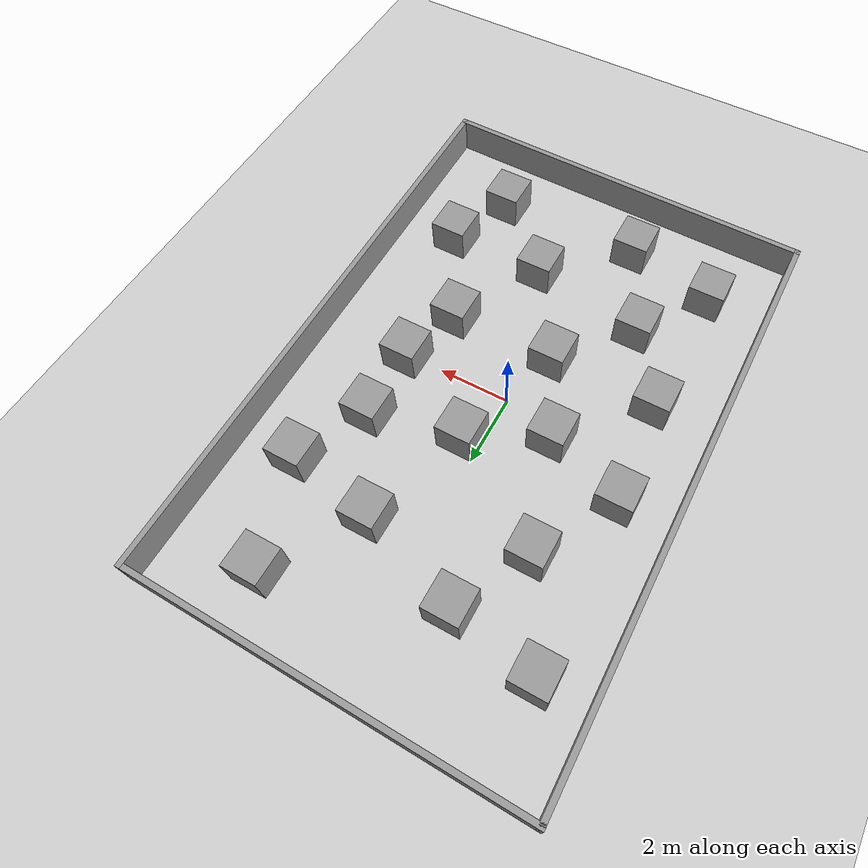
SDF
<sdf version="1.7">
 <world name="default">
  <light name="sun" type="directional">
   <pose>0 0 10 0 -0 0</pose>
   <diffuse>0.8 0.8 0.8 1</diffuse>
   <specular>0.2 0.2 0.2 1</specular>
   <attenuation>
    <range>1000</range>
    <constant>0.9</constant>
    <linear>0.01</linear>
    <quadratic>0.001</quadratic>
   </attenuation>
   <direction>-0.5 0.1 -0.9</direction>
   <spot><inner_angle>0</inner_angle><outer_angle>0</outer_angle><falloff>0</falloff></spot>
  </light>
  <model name="ground_plane">
   <static>1</static>
   <link name="link">
    <collision name="collision">
     <geometry><plane><normal>0 0 1</normal><size>100 100</size></plane></geometry>
     <surface>
      <contact><collide_bitmask>65535</collide_bitmask></contact>
      <friction><ode><mu>100</mu><mu2>50</mu2></ode></friction>
     </surface>
    </collision>
    <visual name="visual">
     <cast_shadows>0</cast_shadows>
     <geometry><plane><normal>0 0 1</normal><size>100 100</size></plane></geometry>
     <material>
      <script><uri>file://media/materials/scripts/gazebo.material</uri><name>Gazebo/Grey</name></script>
     </material>
    </visual>
   </link>
  </model>
  <gravity>0 0 -9.8</gravity>
  <magnetic_field>6e-06 2.3e-05 -4.2e-05</magnetic_field>
  <atmosphere type="adiabatic"/>
  <physics type="ode">
   <max_step_size>0.001</max_step_size>
   <real_time_factor>1</real_time_factor>
   <real_time_update_rate>1000</real_time_update_rate>
  </physics>
  <scene><ambient>0.4 0.4 0.4 1</ambient><background>0.7 0.7 0.7 1</background><shadows>1</shadows></scene>
  <spherical_coordinates>
   <surface_model>EARTH_WGS84</surface_model>
   <latitude_deg>0</latitude_deg>
   <longitude_deg>0</longitude_deg>
   <elevation>0</elevation>
   <heading_deg>0</heading_deg>
  </spherical_coordinates>
  <model name="wall_boundary">
   <pose>0.163695 0.39576 0 0 -0 0</pose>
   <link name="Wall_21">
    <collision name="Wall_21_Collision">
     <geometry><box><size>10.9434 0.15 1</size></box></geometry>
     <pose>0 0 0.5 0 -0 0</pose>
    </collision>
    <visual name="Wall_21_Visual">
     <pose>0 0 0.5 0 -0 0</pose>
     <geometry><box><size>10.9434 0.15 1</size></box></geometry>
     <material>
      <script><uri>file://media/materials/scripts/gazebo.material</uri><name>Gazebo/Grey</name></script>
      <ambient>1 1 1 1</ambient>
     </material>
     <meta><layer>0</layer></meta>
    </visual>
    <pose>0.040955 -8.088 0 0 -0 -0.015103</pose>
   </link>
   <link name="Wall_22">
    <collision name="Wall_22_Collision">
     <geometry><box><size>16.3256 0.15 1</size></box></geometry>
     <pose>0 0 0.5 0 -0 0</pose>
    </collision>
    <visual name="Wall_22_Visual">
     <pose>0 0 0.5 0 -0 0</pose>
     <geometry><box><size>16.3256 0.15 1</size></box></geometry>
     <material>
      <script><uri>file://media/materials/scripts/gazebo.material</uri><name>Gazebo/Grey</name></script>
      <ambient>1 1 1 1</ambient>
     </material>
     <meta><layer>0</layer></meta>
    </visual>
    <pose>5.39595 -0.0815 0 0 -0 1.57587</pose>
   </link>
   <link name="Wall_23">
    <collision name="Wall_23_Collision">
     <geometry><box><size>10.9432 0.15 1</size></box></geometry>
     <pose>0 0 0.5 0 -0 0</pose>
    </collision>
    <visual name="Wall_23_Visual">
     <pose>0 0 0.5 0 -0 0</pose>
     <geometry><box><size>10.9432 0.15 1</size></box></geometry>
     <material>
      <script><uri>file://media/materials/scripts/gazebo.material</uri><name>Gazebo/Grey</name></script>
      <ambient>1 1 1 1</ambient>
     </material>
     <meta><layer>0</layer></meta>
    </visual>
    <pose>-0.041045 8.088 0 0 -0 3.12649</pose>
   </link>
   <link name="Wall_24">
    <collision name="Wall_24_Collision">
     <geometry><box><size>16.3256 0.15 1</size></box></geometry>
     <pose>0 0 0.5 0 -0 0</pose>
    </collision>
    <visual name="Wall_24_Visual">
     <pose>0 0 0.5 0 -0 0</pose>
     <geometry><box><size>16.3256 0.15 1</size></box></geometry>
     <material>
      <script><uri>file://media/materials/scripts/gazebo.material</uri><name>Gazebo/Grey</name></script>
      <ambient>1 1 1 1</ambient>
     </material>
     <meta><layer>0</layer></meta>
    </visual>
    <pose>-5.39604 0.0815 0 0 -0 -1.56573</pose>
   </link>
   <static>1</static>
  </model>
  <model name="unit_box">
   <pose>-2.48616 3.4565 0.499995 0 1e-05 0</pose>
   <link name="link">
    <inertial>
     <mass>1</mass>
     <inertia>
      <ixx>0.166667</ixx>
      <ixy>0</ixy>
      <ixz>0</ixz>
      <iyy>0.166667</iyy>
      <iyz>0</iyz>
      <izz>0.166667</izz>
     </inertia>
    </inertial>
    <collision name="collision"><geometry><box><size>1 1 1</size></box></geometry></collision>
    <visual name="visual">
     <geometry><box><size>1 1 1</size></box></geometry>
     <material>
      <script><name>Gazebo/Grey</name><uri>file://media/materials/scripts/gazebo.material</uri></script>
     </material>
    </visual>
   </link>
  </model>
  <model name="unit_box_0">
   <pose>0.516015 1.50266 0.499995 -1e-05 -0 -0</pose>
   <link name="link">
    <inertial>
     <mass>1</mass>
     <inertia>
      <ixx>0.166667</ixx>
      <ixy>0</ixy>
      <ixz>0</ixz>
      <iyy>0.166667</iyy>
      <iyz>0</iyz>
      <izz>0.166667</izz>
     </inertia>
    </inertial>
    <collision name="collision"><geometry><box><size>1 1 1</size></box></geometry></collision>
    <visual name="visual">
     <geometry><box><size>1 1 1</size></box></geometry>
     <material>
      <script><name>Gazebo/Grey</name><uri>file://media/materials/scripts/gazebo.material</uri></script>
     </material>
    </visual>
   </link>
  </model>
  <model name="unit_box_1">
   <pose>2.4915 -1.67427 0.499995 0 1e-05 0</pose>
   <link name="link">
    <inertial>
     <mass>1</mass>
     <inertia>
      <ixx>0.166667</ixx>
      <ixy>0</ixy>
      <ixz>0</ixz>
      <iyy>0.166667</iyy>
      <iyz>0</iyz>
      <izz>0.166667</izz>
     </inertia>
    </inertial>
    <collision name="collision"><geometry><box><size>1 1 1</size></box></geometry></collision>
    <visual name="visual">
     <geometry><box><size>1 1 1</size></box></geometry>
     <material>
      <script><name>Gazebo/Grey</name><uri>file://media/materials/scripts/gazebo.material</uri></script>
     </material>
    </visual>
   </link>
  </model>
  <model name="unit_box_2">
   <pose>-0.476652 -1.68548 0.499995 -1e-05 -0 -0</pose>
   <link name="link">
    <inertial>
     <mass>1</mass>
     <inertia>
      <ixx>0.166667</ixx>
      <ixy>0</ixy>
      <ixz>0</ixz>
      <iyy>0.166667</iyy>
      <iyz>0</iyz>
      <izz>0.166667</izz>
     </inertia>
    </inertial>
    <collision name="collision"><geometry><box><size>1 1 1</size></box></geometry></collision>
    <visual name="visual">
     <geometry><box><size>1 1 1</size></box></geometry>
     <material>
      <script><name>Gazebo/Grey</name><uri>file://media/materials/scripts/gazebo.material</uri></script>
     </material>
    </visual>
   </link>
  </model>
  <model name="unit_box_3">
   <pose>-1.52948 0.457228 0.499995 0 1e-05 0</pose>
   <link name="link">
    <inertial>
     <mass>1</mass>
     <inertia>
      <ixx>0.166667</ixx>
      <ixy>0</ixy>
      <ixz>0</ixz>
      <iyy>0.166667</iyy>
      <iyz>0</iyz>
      <izz>0.166667</izz>
     </inertia>
    </inertial>
    <collision name="collision"><geometry><box><size>1 1 1</size></box></geometry></collision>
    <visual name="visual">
     <geometry><box><size>1 1 1</size></box></geometry>
     <material>
      <script><name>Gazebo/Grey</name><uri>file://media/materials/scripts/gazebo.material</uri></script>
     </material>
    </visual>
   </link>
  </model>
  <model name="unit_box_4">
   <pose>1.43985 4.49024 0.499995 -1e-05 -0 -0</pose>
   <link name="link">
    <inertial>
     <mass>1</mass>
     <inertia>
      <ixx>0.166667</ixx>
      <ixy>0</ixy>
      <ixz>0</ixz>
      <iyy>0.166667</iyy>
      <iyz>0</iyz>
      <izz>0.166667</izz>
     </inertia>
    </inertial>
    <collision name="collision"><geometry><box><size>1 1 1</size></box></geometry></collision>
    <visual name="visual">
     <geometry><box><size>1 1 1</size></box></geometry>
     <material>
      <script><name>Gazebo/Grey</name><uri>file://media/materials/scripts/gazebo.material</uri></script>
     </material>
    </visual>
   </link>
  </model>
  <model name="unit_box_5">
   <pose>-1.45873 5.51901 0.499995 0 1e-05 0</pose>
   <link name="link">
    <inertial>
     <mass>1</mass>
     <inertia>
      <ixx>0.166667</ixx>
      <ixy>0</ixy>
      <ixz>0</ixz>
      <iyy>0.166667</iyy>
      <iyz>0</iyz>
      <izz>0.166667</izz>
     </inertia>
    </inertial>
    <collision name="collision"><geometry><box><size>1 1 1</size></box></geometry></collision>
    <visual name="visual">
     <geometry><box><size>1 1 1</size></box></geometry>
     <material>
      <script><name>Gazebo/Grey</name><uri>file://media/materials/scripts/gazebo.material</uri></script>
     </material>
    </visual>
   </link>
  </model>
  <model name="unit_box_6">
   <pose>-2.11582 -3.60109 0.499995 -1e-05 -0 -0</pose>
   <link name="link">
    <inertial>
     <mass>1</mass>
     <inertia>
      <ixx>0.166667</ixx>
      <ixy>0</ixy>
      <ixz>0</ixz>
      <iyy>0.166667</iyy>
      <iyz>0</iyz>
      <izz>0.166667</izz>
     </inertia>
    </inertial>
    <collision name="collision"><geometry><box><size>1 1 1</size></box></geometry></collision>
    <visual name="visual">
     <geometry><box><size>1 1 1</size></box></geometry>
     <material>
      <script><name>Gazebo/Grey</name><uri>file://media/materials/scripts/gazebo.material</uri></script>
     </material>
    </visual>
   </link>
  </model>
  <model name="unit_box_7">
   <pose>-3.73207 1.24624 0.499995 -1e-05 -0 -0</pose>
   <link name="link">
    <inertial>
     <mass>1</mass>
     <inertia>
      <ixx>0.166667</ixx>
      <ixy>0</ixy>
      <ixz>0</ixz>
      <iyy>0.166667</iyy>
      <iyz>0</iyz>
      <izz>0.166667</izz>
     </inertia>
    </inertial>
    <collision name="collision"><geometry><box><size>1 1 1</size></box></geometry></collision>
    <visual name="visual">
     <geometry><box><size>1 1 1</size></box></geometry>
     <material>
      <script><name>Gazebo/Grey</name><uri>file://media/materials/scripts/gazebo.material</uri></script>
     </material>
    </visual>
   </link>
  </model>
  <model name="unit_box_8">
   <pose>2.97795 2.0471 0.499995 -1e-05 -0 -0</pose>
   <link name="link">
    <inertial>
     <mass>1</mass>
     <inertia>
      <ixx>0.166667</ixx>
      <ixy>0</ixy>
      <ixz>0</ixz>
      <iyy>0.166667</iyy>
      <iyz>0</iyz>
      <izz>0.166667</izz>
     </inertia>
    </inertial>
    <collision name="collision"><geometry><box><size>1 1 1</size></box></geometry></collision>
    <visual name="visual">
     <geometry><box><size>1 1 1</size></box></geometry>
     <material>
      <script><name>Gazebo/Grey</name><uri>file://media/materials/scripts/gazebo.material</uri></script>
     </material>
    </visual>
   </link>
  </model>
  <model name="unit_box_9">
   <pose>1.14831 -4.17889 0.499995 0 1e-05 0</pose>
   <link name="link">
    <inertial>
     <mass>1</mass>
     <inertia>
      <ixx>0.166667</ixx>
      <ixy>0</ixy>
      <ixz>0</ixz>
      <iyy>0.166667</iyy>
      <iyz>0</iyz>
      <izz>0.166667</izz>
     </inertia>
    </inertial>
    <collision name="collision"><geometry><box><size>1 1 1</size></box></geometry></collision>
    <visual name="visual">
     <geometry><box><size>1 1 1</size></box></geometry>
     <material>
      <script><name>Gazebo/Grey</name><uri>file://media/materials/scripts/gazebo.material</uri></script>
     </material>
    </visual>
   </link>
  </model>
  <model name="unit_box_10">
   <pose>-0.946508 -6.10557 0.499995 -1e-05 -0 -0</pose>
   <link name="link">
    <inertial>
     <mass>1</mass>
     <inertia>
      <ixx>0.166667</ixx>
      <ixy>0</ixy>
      <ixz>0</ixz>
      <iyy>0.166667</iyy>
      <iyz>0</iyz>
      <izz>0.166667</izz>
     </inertia>
    </inertial>
    <collision name="collision"><geometry><box><size>1 1 1</size></box></geometry></collision>
    <visual name="visual">
     <geometry><box><size>1 1 1</size></box></geometry>
     <material>
      <script><name>Gazebo/Grey</name><uri>file://media/materials/scripts/gazebo.material</uri></script>
     </material>
    </visual>
   </link>
  </model>
  <model name="unit_box_11">
   <pose>3.00278 6.84849 0.499995 0 1e-05 0</pose>
   <link name="link">
    <inertial>
     <mass>1</mass>
     <inertia>
      <ixx>0.166667</ixx>
      <ixy>0</ixy>
      <ixz>0</ixz>
      <iyy>0.166667</iyy>
      <iyz>0</iyz>
      <izz>0.166667</izz>
     </inertia>
    </inertial>
    <collision name="collision"><geometry><box><size>1 1 1</size></box></geometry></collision>
    <visual name="visual">
     <geometry><box><size>1 1 1</size></box></geometry>
     <material>
      <script><name>Gazebo/Grey</name><uri>file://media/materials/scripts/gazebo.material</uri></script>
     </material>
    </visual>
   </link>
  </model>
  <model name="unit_box_12">
   <pose>3.128 -6.00622 0.499995 -1e-05 -0 -0</pose>
   <link name="link">
    <inertial>
     <mass>1</mass>
     <inertia>
      <ixx>0.166667</ixx>
      <ixy>0</ixy>
      <ixz>0</ixz>
      <iyy>0.166667</iyy>
      <iyz>0</iyz>
      <izz>0.166667</izz>
     </inertia>
    </inertial>
    <collision name="collision"><geometry><box><size>1 1 1</size></box></geometry></collision>
    <visual name="visual">
     <geometry><box><size>1 1 1</size></box></geometry>
     <material>
      <script><name>Gazebo/Grey</name><uri>file://media/materials/scripts/gazebo.material</uri></script>
     </material>
    </visual>
   </link>
  </model>
  <model name="unit_box_13">
   <pose>-3.87031 5.97828 0.499995 0 1e-05 0</pose>
   <link name="link">
    <inertial>
     <mass>1</mass>
     <inertia>
      <ixx>0.166667</ixx>
      <ixy>0</ixy>
      <ixz>0</ixz>
      <iyy>0.166667</iyy>
      <iyz>0</iyz>
      <izz>0.166667</izz>
     </inertia>
    </inertial>
    <collision name="collision"><geometry><box><size>1 1 1</size></box></geometry></collision>
    <visual name="visual">
     <geometry><box><size>1 1 1</size></box></geometry>
     <material>
      <script><name>Gazebo/Grey</name><uri>file://media/materials/scripts/gazebo.material</uri></script>
     </material>
    </visual>
   </link>
  </model>
  <model name="unit_box_14">
   <pose>-3.45423 -5.52548 0.499995 -1e-05 -0 -0</pose>
   <link name="link">
    <inertial>
     <mass>1</mass>
     <inertia>
      <ixx>0.166667</ixx>
      <ixy>0</ixy>
      <ixz>0</ixz>
      <iyy>0.166667</iyy>
      <iyz>0</iyz>
      <izz>0.166667</izz>
     </inertia>
    </inertial>
    <collision name="collision"><geometry><box><size>1 1 1</size></box></geometry></collision>
    <visual name="visual">
     <geometry><box><size>1 1 1</size></box></geometry>
     <material>
      <script><name>Gazebo/Grey</name><uri>file://media/materials/scripts/gazebo.material</uri></script>
     </material>
    </visual>
   </link>
  </model>
  <model name="unit_box_15">
   <pose>-3.47105 -1.6481 0.499995 -1e-05 -0 -0</pose>
   <link name="link">
    <inertial>
     <mass>1</mass>
     <inertia>
      <ixx>0.166667</ixx>
      <ixy>0</ixy>
      <ixz>0</ixz>
      <iyy>0.166667</iyy>
      <iyz>0</iyz>
      <izz>0.166667</izz>
     </inertia>
    </inertial>
    <collision name="collision"><geometry><box><size>1 1 1</size></box></geometry></collision>
    <visual name="visual">
     <geometry><box><size>1 1 1</size></box></geometry>
     <material>
      <script><name>Gazebo/Grey</name><uri>file://media/materials/scripts/gazebo.material</uri></script>
     </material>
    </visual>
   </link>
  </model>
  <model name="unit_box_16">
   <pose>3.89448 -4.16439 0.499995 0 1e-05 0</pose>
   <link name="link">
    <inertial>
     <mass>1</mass>
     <inertia>
      <ixx>0.166667</ixx>
      <ixy>0</ixy>
      <ixz>0</ixz>
      <iyy>0.166667</iyy>
      <iyz>0</iyz>
      <izz>0.166667</izz>
     </inertia>
    </inertial>
    <collision name="collision"><geometry><box><size>1 1 1</size></box></geometry></collision>
    <visual name="visual">
     <geometry><box><size>1 1 1</size></box></geometry>
     <material>
      <script><name>Gazebo/Grey</name><uri>file://media/materials/scripts/gazebo.material</uri></script>
     </material>
    </visual>
   </link>
  </model>
  <model name="unit_box_17">
   <pose>3.02139 0.067475 0.499995 -1e-05 -0 0</pose>
   <link name="link">
    <inertial>
     <mass>1</mass>
     <inertia>
      <ixx>0.166667</ixx>
      <ixy>0</ixy>
      <ixz>0</ixz>
      <iyy>0.166667</iyy>
      <iyz>0</iyz>
      <izz>0.166667</izz>
     </inertia>
    </inertial>
    <collision name="collision"><geometry><box><size>1 1 1</size></box></geometry></collision>
    <visual name="visual">
     <geometry><box><size>1 1 1</size></box></geometry>
     <material>
      <script><name>Gazebo/Grey</name><uri>file://media/materials/scripts/gazebo.material</uri></script>
     </material>
    </visual>
   </link>
  </model>
  <model name="unit_box_18">
   <pose>3.89738 3.99117 0.5 0 -0 0</pose>
   <link name="link">
    <inertial>
     <mass>1</mass>
     <inertia>
      <ixx>0.166667</ixx>
      <ixy>0</ixy>
      <ixz>0</ixz>
      <iyy>0.166667</iyy>
      <iyz>0</iyz>
      <izz>0.166667</izz>
     </inertia>
    </inertial>
    <collision name="collision"><geometry><box><size>1 1 1</size></box></geometry></collision>
    <visual name="visual">
     <geometry><box><size>1 1 1</size></box></geometry>
     <material>
      <script><name>Gazebo/Grey</name><uri>file://media/materials/scripts/gazebo.material</uri></script>
     </material>
    </visual>
   </link>
  </model>
 </world>
</sdf>
